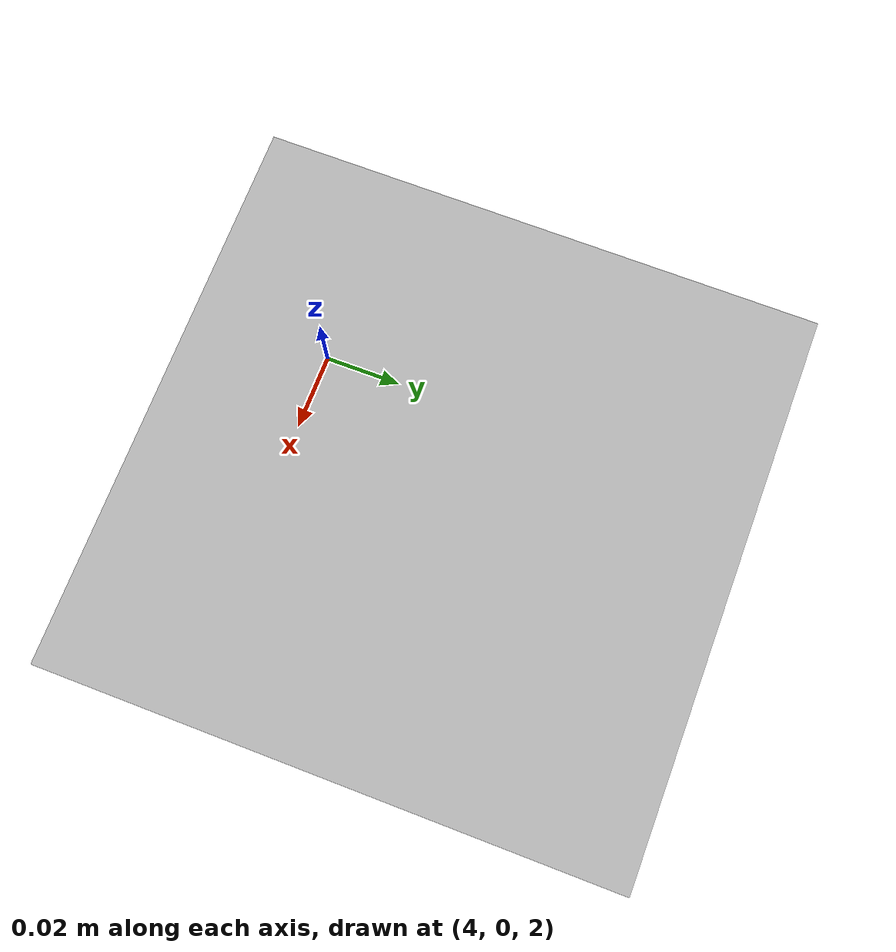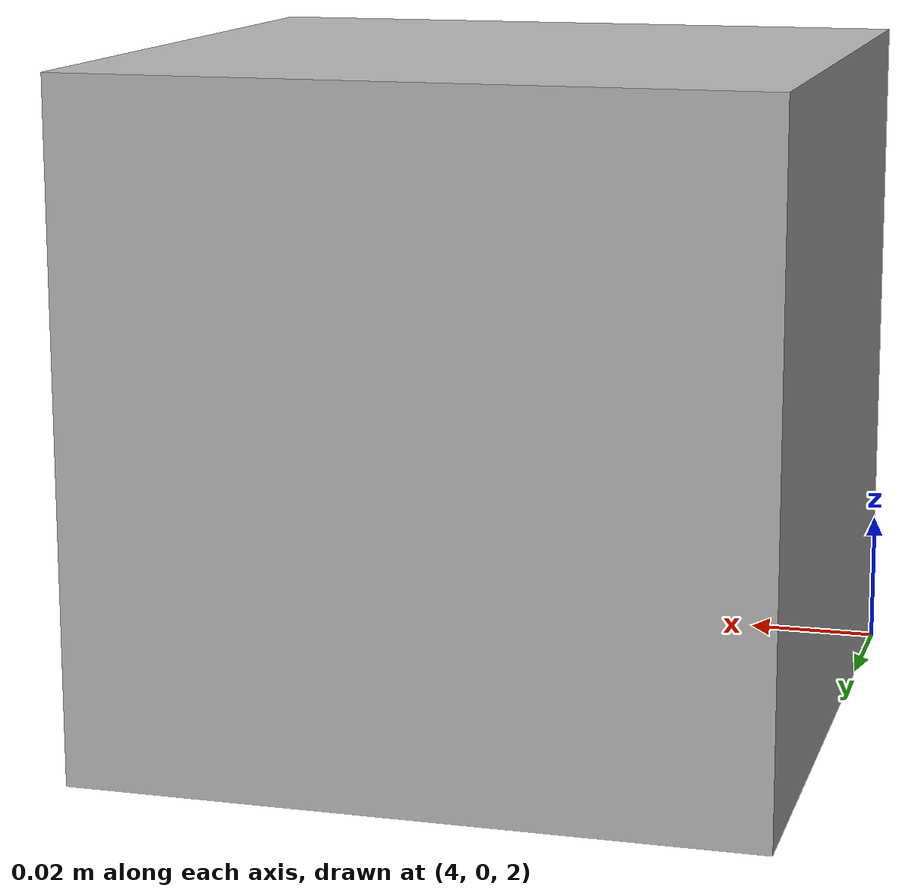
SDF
<?xml version="1.0" ?>

<!--
bridge: https://github.com/gazebosim/ros_gz/tree/ros2/ros_gz_bridge
https://github.com/gazebosim/gz-sim/blob/gz-sim8/test/worlds/imu.sdf
 -->

<sdf version="1.6">
  <world name="imu_sensor">
    <physics name="1ms" type="ignored">
            <max_step_size>0.001</max_step_size>
            <real_time_factor>1.0</real_time_factor>
        </physics>
        <plugin
            filename="gz-sim-physics-system"
            name="gz::sim::systems::Physics">
        </plugin>
        <plugin
            filename="gz-sim-user-commands-system"
            name="gz::sim::systems::UserCommands">
        </plugin>
        <plugin
            filename="gz-sim-scene-broadcaster-system"
            name="gz::sim::systems::SceneBroadcaster">
        </plugin>

        <plugin filename="gz-sim-imu-system"
            name="gz::sim::systems::Imu">
        </plugin>

        <light type="directional" name="sun">
            <cast_shadows>true</cast_shadows>
            <pose>0 0 10 0 0 0</pose>
            <diffuse>0.8 0.8 0.8 1</diffuse>
            <specular>0.2 0.2 0.2 1</specular>
            <attenuation>
                <range>1000</range>
                <constant>0.9</constant>
                <linear>0.01</linear>
                <quadratic>0.001</quadratic>
            </attenuation>
            <direction>-0.5 0.1 -0.9</direction>
        </light>

        <model name="ground_plane">
            <static>true</static>
            <link name="link">
                <collision name="collision">
                    <geometry>
                        <plane>
                            <normal>0 0 1</normal>
                        </plane>
                    </geometry>
                </collision>
                <visual name="visual">
                    <geometry>
                        <plane>
                            <normal>0 0 1</normal>
                            <size>100 100</size>
                        </plane>
                    </geometry>
                    <material>
                        <ambient>0.8 0.8 0.8 1</ambient>
                        <diffuse>0.8 0.8 0.8 1</diffuse>
                        <specular>0.8 0.8 0.8 1</specular>
                    </material>
                </visual>
            </link>
        </model>

    <model name="imu_model">
      <pose>4 0 2 0 0 0</pose>
      <static>true</static>
      <link name="link">
        <pose>0.05 0.05 0.05 0 0 0</pose>
        <inertial>
          <mass>0.1</mass>
          <inertia>
            <ixx>0.000166667</ixx>
            <iyy>0.000166667</iyy>
            <izz>0.000166667</izz>
          </inertia>
        </inertial>
        <collision name="collision">
          <geometry>
            <box>
              <size>0.1 0.1 0.1</size>
            </box>
          </geometry>
        </collision>
        <visual name="visual">
          <geometry>
            <box>
              <size>0.1 0.1 0.1</size>
            </box>
          </geometry>
        </visual>
        <sensor name="imu_sensor" type="imu">
          <always_on>1</always_on>
          <update_rate>10</update_rate>
          <visualize>true</visualize>
          <topic>/imu</topic>
        </sensor>
      </link>
    </model>

  </world>
</sdf>
